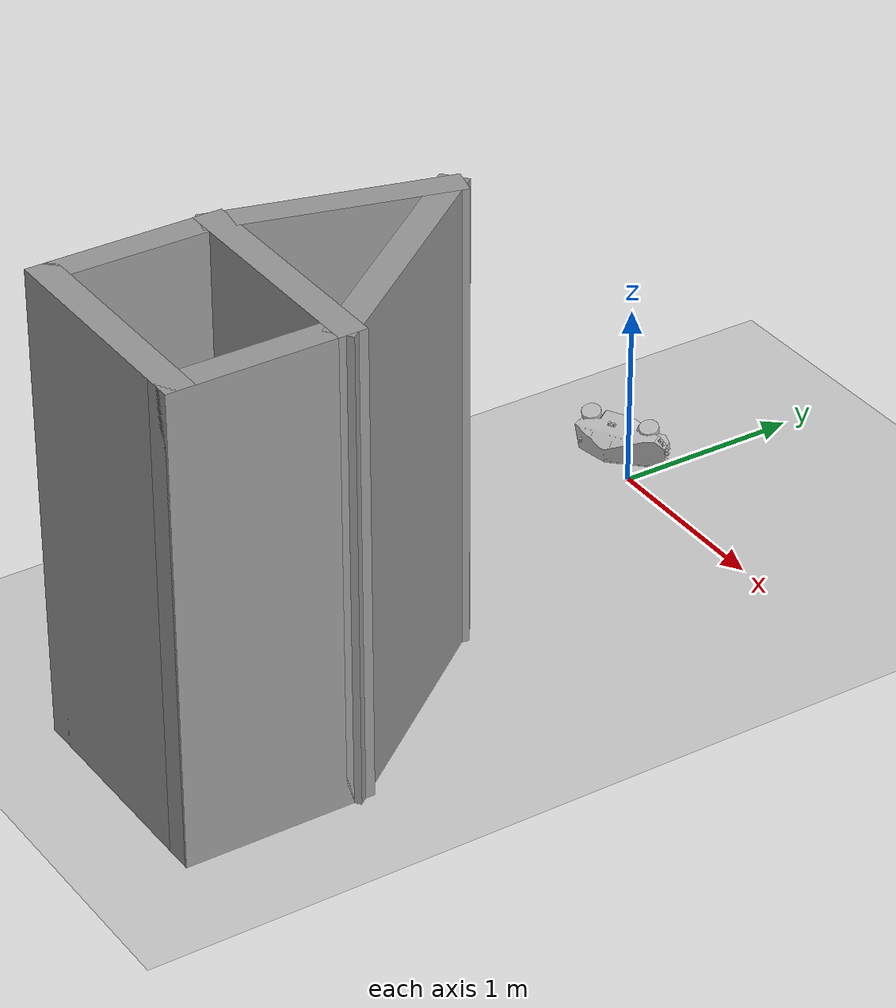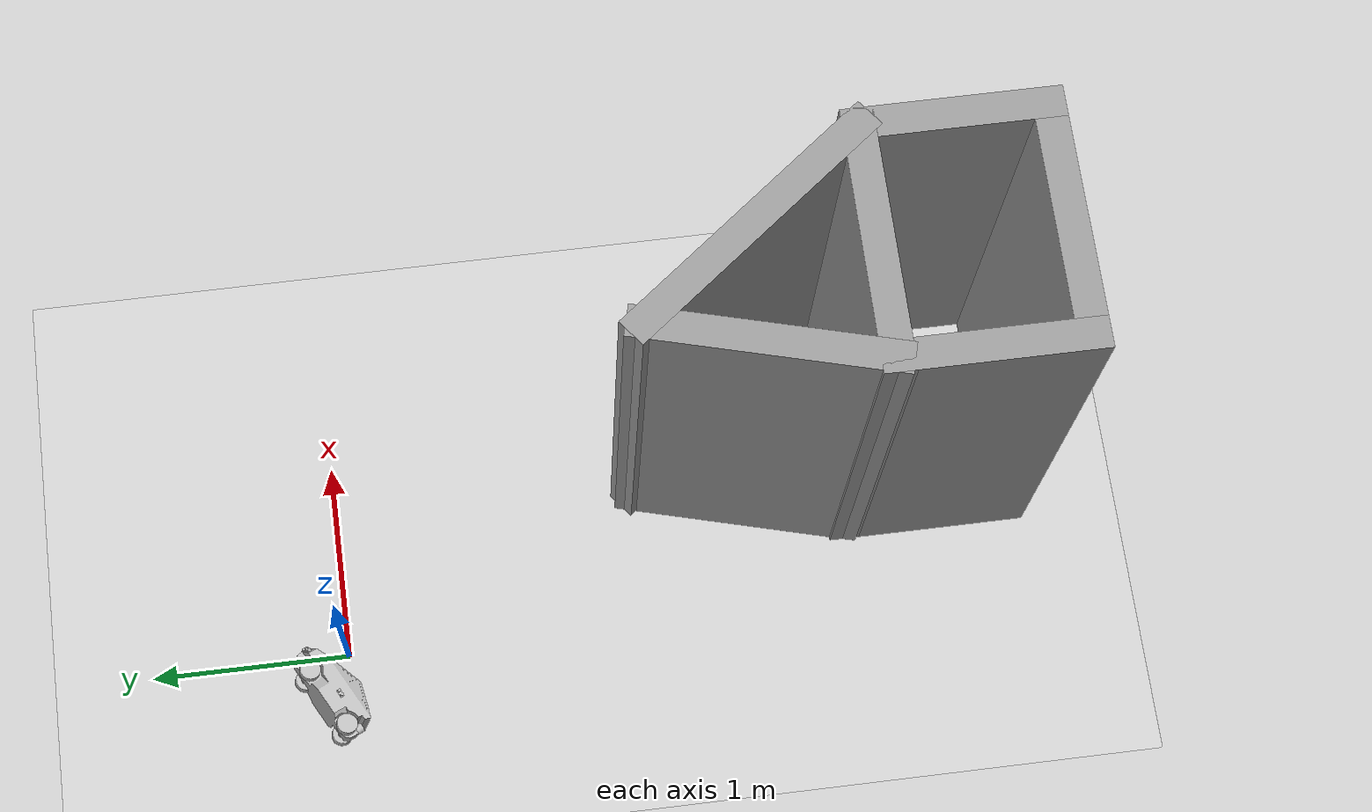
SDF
<sdf version="1.7">
 <world name="default">
  <light name="sun" type="directional">
   <pose>0 0 10 0 -0 0</pose>
   <diffuse>0.8 0.8 0.8 1</diffuse>
   <specular>0.2 0.2 0.2 1</specular>
   <attenuation>
    <range>1000</range>
    <constant>0.9</constant>
    <linear>0.01</linear>
    <quadratic>0.001</quadratic>
   </attenuation>
   <direction>-0.5 0.1 -0.9</direction>
   <spot><inner_angle>0</inner_angle><outer_angle>0</outer_angle><falloff>0</falloff></spot>
  </light>
  <model name="ground_plane">
   <static>1</static>
   <link name="link">
    <collision name="collision">
     <geometry><plane><normal>0 0 1</normal><size>100 100</size></plane></geometry>
     <surface>
      <contact><collide_bitmask>65535</collide_bitmask></contact>
      <friction><ode><mu>100</mu><mu2>50</mu2></ode></friction>
     </surface>
    </collision>
    <visual name="visual">
     <cast_shadows>0</cast_shadows>
     <geometry><plane><normal>0 0 1</normal><size>100 100</size></plane></geometry>
     <material>
      <script><uri>file://media/materials/scripts/gazebo.material</uri><name>Gazebo/Grey</name></script>
     </material>
    </visual>
   </link>
  </model>
  <gravity>0 0 -9.8</gravity>
  <magnetic_field>6e-06 2.3e-05 -4.2e-05</magnetic_field>
  <atmosphere type="adiabatic"/>
  <physics type="ode">
   <max_step_size>0.001</max_step_size>
   <real_time_factor>1</real_time_factor>
   <real_time_update_rate>1000</real_time_update_rate>
  </physics>
  <scene><ambient>0.4 0.4 0.4 1</ambient><background>0.7 0.7 0.7 1</background><shadows>1</shadows></scene>
  <spherical_coordinates>
   <surface_model>EARTH_WGS84</surface_model>
   <latitude_deg>0</latitude_deg>
   <longitude_deg>0</longitude_deg>
   <elevation>0</elevation>
   <heading_deg>0</heading_deg>
  </spherical_coordinates>
  <model name="xytronY">
   <link name="base_link">
    <inertial>
     <pose>-0.023569 0.00712 7e-06 0 -0 0</pose>
     <mass>11.5484</mass>
     <inertia>
      <ixx>0.05819</ixx>
      <ixy>-0.00487047</ixy>
      <ixz>-8.10814e-05</ixz>
      <iyy>0.17727</iyy>
      <iyz>5.18493e-07</iyz>
      <izz>0.182083</izz>
     </inertia>
    </inertial>
    <collision name="base_link_collision">
     <geometry>
      <mesh><scale>1 1 1</scale><uri>/home/ggh/catkin_ws/src/xytronY/meshes/base_link.STL</uri></mesh>
     </geometry>
    </collision>
    <collision name="base_link_fixed_joint_lump__Ulteasonic_B_L_link_collision_1">
     <pose>-0.27028 0.062687 -0.0051 1.5708 -0 -2.1817</pose>
     <geometry>
      <mesh><scale>1 1 1</scale><uri>/home/ggh/catkin_ws/src/xytronY/meshes/Ulteasonic_B_L_link.STL</uri></mesh>
     </geometry>
    </collision>
    <collision name="base_link_fixed_joint_lump__Ulteasonic_B_M_link_collision_2">
     <pose>-0.28988 0 -0.0051 -1.5708 -0 -1.5708</pose>
     <geometry>
      <mesh><scale>1 1 1</scale><uri>/home/ggh/catkin_ws/src/xytronY/meshes/Ulteasonic_B_M_link.STL</uri></mesh>
     </geometry>
    </collision>
    <collision name="base_link_fixed_joint_lump__Ulteasonic_B_R_link_collision_3">
     <pose>-0.27028 -0.062687 -0.0051 1.5708 -0 -0.95993</pose>
     <geometry>
      <mesh><scale>1 1 1</scale><uri>/home/ggh/catkin_ws/src/xytronY/meshes/Ulteasonic_B_R_link.STL</uri></mesh>
     </geometry>
    </collision>
    <collision name="base_link_fixed_joint_lump__Ulteasonic_L_link_collision_4">
     <pose>0.010615 0.0905 -0.0051 1.5708 -0 -3.14159</pose>
     <geometry>
      <mesh><scale>1 1 1</scale><uri>/home/ggh/catkin_ws/src/xytronY/meshes/Ulteasonic_L_link.STL</uri></mesh>
     </geometry>
    </collision>
    <collision name="base_link_fixed_joint_lump__Ulteasonic_R_link_collision_5">
     <pose>0.010615 -0.0905 -0.0051 1.5708 -0 0</pose>
     <geometry>
      <mesh><scale>1 1 1</scale><uri>/home/ggh/catkin_ws/src/xytronY/meshes/Ulteasonic_R_link.STL</uri></mesh>
     </geometry>
    </collision>
    <collision name="base_link_fixed_joint_lump__cam_link_collision_6">
     <pose>0.14716 0 0.07398 1.5708 -0 0</pose>
     <geometry>
      <mesh><scale>1 1 1</scale><uri>/home/ggh/catkin_ws/src/xytronY/meshes/cam_link.STL</uri></mesh>
     </geometry>
    </collision>
    <visual name="base_link_visual">
     <geometry>
      <mesh><scale>1 1 1</scale><uri>/home/ggh/catkin_ws/src/xytronY/meshes/base_link.STL</uri></mesh>
     </geometry>
    </visual>
    <visual name="base_link_fixed_joint_lump__Ulteasonic_B_L_link_visual_1">
     <pose>-0.27028 0.062687 -0.0051 1.5708 -0 -2.1817</pose>
     <geometry>
      <mesh><scale>1 1 1</scale><uri>/home/ggh/catkin_ws/src/xytronY/meshes/Ulteasonic_B_L_link.STL</uri></mesh>
     </geometry>
    </visual>
    <visual name="base_link_fixed_joint_lump__Ulteasonic_B_M_link_visual_2">
     <pose>-0.28988 0 -0.0051 -1.5708 -0 -1.5708</pose>
     <geometry>
      <mesh><scale>1 1 1</scale><uri>/home/ggh/catkin_ws/src/xytronY/meshes/Ulteasonic_B_M_link.STL</uri></mesh>
     </geometry>
    </visual>
    <visual name="base_link_fixed_joint_lump__Ulteasonic_B_R_link_visual_3">
     <pose>-0.27028 -0.062687 -0.0051 1.5708 -0 -0.95993</pose>
     <geometry>
      <mesh><scale>1 1 1</scale><uri>/home/ggh/catkin_ws/src/xytronY/meshes/Ulteasonic_B_R_link.STL</uri></mesh>
     </geometry>
    </visual>
    <visual name="base_link_fixed_joint_lump__Ulteasonic_L_link_visual_4">
     <pose>0.010615 0.0905 -0.0051 1.5708 -0 -3.14159</pose>
     <geometry>
      <mesh><scale>1 1 1</scale><uri>/home/ggh/catkin_ws/src/xytronY/meshes/Ulteasonic_L_link.STL</uri></mesh>
     </geometry>
    </visual>
    <visual name="base_link_fixed_joint_lump__Ulteasonic_R_link_visual_5">
     <pose>0.010615 -0.0905 -0.0051 1.5708 -0 0</pose>
     <geometry>
      <mesh><scale>1 1 1</scale><uri>/home/ggh/catkin_ws/src/xytronY/meshes/Ulteasonic_R_link.STL</uri></mesh>
     </geometry>
    </visual>
    <visual name="base_link_fixed_joint_lump__cam_link_visual_6">
     <pose>0.14716 0 0.07398 1.5708 -0 0</pose>
     <geometry>
      <mesh><scale>1 1 1</scale><uri>/home/ggh/catkin_ws/src/xytronY/meshes/cam_link.STL</uri></mesh>
     </geometry>
    </visual>
   </link>
   <joint name="B_L_joint" type="revolute">
    <pose relative_to="base_link">-0.17419 0.027 -0.0621 1.5708 0.39309 3.14159</pose>
    <parent>base_link</parent>
    <child>B_L_link</child>
    <axis>
     <xyz>0 0 1</xyz>
     <limit><lower>-1e+16</lower><upper>1e+16</upper></limit>
     <dynamics><spring_reference>0</spring_reference><spring_stiffness>0</spring_stiffness></dynamics>
    </axis>
   </joint>
   <link name="B_L_link">
    <pose relative_to="B_L_joint">0 0 0 0 -0 0</pose>
    <inertial>
     <pose>-0 -0 0.039695 0 -0 0</pose>
     <mass>0.39886</mass>
     <inertia>
      <ixx>0.000348</ixx>
      <ixy>0</ixy>
      <ixz>-6.9279e-21</ixz>
      <iyy>0.000348</iyy>
      <iyz>6.0116e-21</iyz>
      <izz>0.00048566</izz>
     </inertia>
    </inertial>
    <collision name="B_L_link_collision">
     <geometry>
      <mesh><scale>1 1 1</scale><uri>/home/ggh/catkin_ws/src/xytronY/meshes/B_L_link.STL</uri></mesh>
     </geometry>
    </collision>
    <visual name="B_L_link_visual">
     <geometry>
      <mesh><scale>1 1 1</scale><uri>/home/ggh/catkin_ws/src/xytronY/meshes/B_L_link.STL</uri></mesh>
     </geometry>
    </visual>
   </link>
   <joint name="B_R_joint" type="revolute">
    <pose relative_to="base_link">-0.17419 -0.023 -0.0621 1.5708 0.9325 0</pose>
    <parent>base_link</parent>
    <child>B_R_link</child>
    <axis>
     <xyz>0 0 1</xyz>
     <limit><lower>-1e+16</lower><upper>1e+16</upper></limit>
     <dynamics><spring_reference>0</spring_reference><spring_stiffness>0</spring_stiffness></dynamics>
    </axis>
   </joint>
   <link name="B_R_link">
    <pose relative_to="B_R_joint">0 0 0 0 -0 0</pose>
    <inertial>
     <pose>-0 -0 0.043695 0 -0 0</pose>
     <mass>0.39886</mass>
     <inertia>
      <ixx>0.000348</ixx>
      <ixy>-2.7105e-20</ixy>
      <ixz>-5.7064e-21</ixz>
      <iyy>0.000348</iyy>
      <iyz>9.0481e-21</iyz>
      <izz>0.00048566</izz>
     </inertia>
    </inertial>
    <collision name="B_R_link_collision">
     <geometry>
      <mesh><scale>1 1 1</scale><uri>/home/ggh/catkin_ws/src/xytronY/meshes/B_R_link.STL</uri></mesh>
     </geometry>
    </collision>
    <visual name="B_R_link_visual">
     <geometry>
      <mesh><scale>1 1 1</scale><uri>/home/ggh/catkin_ws/src/xytronY/meshes/B_R_link.STL</uri></mesh>
     </geometry>
    </visual>
   </link>
   <joint name="F_L_joint" type="revolute">
    <pose relative_to="base_link">0.16081 0.027 -0.0621 1.5708 0.39309 3.14159</pose>
    <parent>base_link</parent>
    <child>F_L_link</child>
    <axis>
     <xyz>0 0 1</xyz>
     <limit><lower>-1e+16</lower><upper>1e+16</upper></limit>
     <dynamics><spring_reference>0</spring_reference><spring_stiffness>0</spring_stiffness></dynamics>
    </axis>
   </joint>
   <link name="F_L_link">
    <pose relative_to="F_L_joint">0 0 0 0 -0 0</pose>
    <inertial>
     <pose>0 0 0.039695 0 -0 0</pose>
     <mass>0.39886</mass>
     <inertia>
      <ixx>0.000348</ixx>
      <ixy>2.7105e-20</ixy>
      <ixz>-6.9279e-21</ixz>
      <iyy>0.000348</iyy>
      <iyz>6.0116e-21</iyz>
      <izz>0.00048566</izz>
     </inertia>
    </inertial>
    <collision name="F_L_link_collision">
     <geometry>
      <mesh><scale>1 1 1</scale><uri>/home/ggh/catkin_ws/src/xytronY/meshes/F_L_link.STL</uri></mesh>
     </geometry>
    </collision>
    <visual name="F_L_link_visual">
     <geometry>
      <mesh><scale>1 1 1</scale><uri>/home/ggh/catkin_ws/src/xytronY/meshes/F_L_link.STL</uri></mesh>
     </geometry>
    </visual>
   </link>
   <joint name="F_R_joint" type="revolute">
    <pose relative_to="base_link">0.16081 -0.023 -0.0621 1.5708 -0.68589 0</pose>
    <parent>base_link</parent>
    <child>F_R_link</child>
    <axis>
     <xyz>0 0 1</xyz>
     <limit><lower>-1e+16</lower><upper>1e+16</upper></limit>
     <dynamics><spring_reference>0</spring_reference><spring_stiffness>0</spring_stiffness></dynamics>
    </axis>
   </joint>
   <link name="F_R_link">
    <pose relative_to="F_R_joint">0 0 0 0 -0 0</pose>
    <inertial>
     <pose>0 0 0.043695 0 -0 0</pose>
     <mass>0.39886</mass>
     <inertia>
      <ixx>0.000348</ixx>
      <ixy>0</ixy>
      <ixz>-1.8117e-21</ixz>
      <iyy>0.000348</iyy>
      <iyz>5.4102e-22</iyz>
      <izz>0.00048566</izz>
     </inertia>
    </inertial>
    <collision name="F_R_link_collision">
     <geometry>
      <mesh><scale>1 1 1</scale><uri>/home/ggh/catkin_ws/src/xytronY/meshes/F_R_link.STL</uri></mesh>
     </geometry>
    </collision>
    <visual name="F_R_link_visual">
     <geometry>
      <mesh><scale>1 1 1</scale><uri>/home/ggh/catkin_ws/src/xytronY/meshes/F_R_link.STL</uri></mesh>
     </geometry>
    </visual>
   </link>
   <joint name="Lidar_joint" type="revolute">
    <pose relative_to="base_link">0.19412 0 0 -3.14159 0 0</pose>
    <parent>base_link</parent>
    <child>Lidar_link</child>
    <axis>
     <xyz>0 0 1</xyz>
     <limit><lower>-1e+16</lower><upper>1e+16</upper></limit>
     <dynamics><spring_reference>0</spring_reference><spring_stiffness>0</spring_stiffness></dynamics>
    </axis>
   </joint>
   <link name="Lidar_link">
    <pose relative_to="Lidar_joint">0 0 0 0 -0 0</pose>
    <inertial>
     <pose>-0 -0 0.0016 0 -0 0</pose>
     <mass>0.076576</mass>
     <inertia>
      <ixx>2.1671e-05</ixx>
      <ixy>-5.6231e-54</ixy>
      <ixz>9.1835e-38</ixz>
      <iyy>2.1671e-05</iyy>
      <iyz>-1.3832e-22</iyz>
      <izz>2.393e-05</izz>
     </inertia>
    </inertial>
    <collision name="Lidar_link_collision">
     <geometry>
      <mesh><scale>1 1 1</scale><uri>/home/ggh/catkin_ws/src/xytronY/meshes/Lidar_link.STL</uri></mesh>
     </geometry>
    </collision>
    <visual name="Lidar_link_visual">
     <geometry>
      <mesh><scale>1 1 1</scale><uri>/home/ggh/catkin_ws/src/xytronY/meshes/Lidar_link.STL</uri></mesh>
     </geometry>
    </visual>
   </link>
   <pose>-0.230397 0.07817 0.102926 -1.85861 -3e-06 -2.65006</pose>
  </model>
  <model name="Untitled">
   <pose>0.797579 -1.7575 0 0 -0 0</pose>
   <link name="Wall_0">
    <collision name="Wall_0_Collision">
     <geometry><box><size>1 0.15 2.5</size></box></geometry>
     <pose>0 0 1.25 0 -0 0</pose>
    </collision>
    <visual name="Wall_0_Visual">
     <pose>0 0 1.25 0 -0 0</pose>
     <geometry><box><size>1 0.15 2.5</size></box></geometry>
     <material>
      <script><uri>file://media/materials/scripts/gazebo.material</uri><name>Gazebo/Grey</name></script>
      <ambient>1 1 1 1</ambient>
     </material>
     <meta><layer>0</layer></meta>
    </visual>
    <pose>-0.407579 -1.2575 0 0 -0 -1.5708</pose>
   </link>
   <link name="Wall_1">
    <collision name="Wall_1_Collision">
     <geometry><box><size>1.25 0.15 2.5</size></box></geometry>
     <pose>0 0 1.25 0 -0 0</pose>
    </collision>
    <visual name="Wall_1_Visual">
     <pose>0 0 1.25 0 -0 0</pose>
     <geometry><box><size>1.25 0.15 2.5</size></box></geometry>
     <material>
      <script><uri>file://media/materials/scripts/gazebo.material</uri><name>Gazebo/Grey</name></script>
      <ambient>1 1 1 1</ambient>
     </material>
     <meta><layer>0</layer></meta>
    </visual>
    <pose>0.142421 -1.6825 0 0 -0 0</pose>
   </link>
   <link name="Wall_2">
    <collision name="Wall_2_Collision">
     <geometry><box><size>1 0.15 2.5</size></box></geometry>
     <pose>0 0 1.25 0 -0 0</pose>
    </collision>
    <visual name="Wall_2_Visual">
     <pose>0 0 1.25 0 -0 0</pose>
     <geometry><box><size>1 0.15 2.5</size></box></geometry>
     <material>
      <script><uri>file://media/materials/scripts/gazebo.material</uri><name>Gazebo/Grey</name></script>
      <ambient>1 1 1 1</ambient>
     </material>
     <meta><layer>0</layer></meta>
    </visual>
    <pose>0.692421 -1.2575 0 0 -0 1.5708</pose>
   </link>
   <link name="Wall_3">
    <collision name="Wall_3_Collision">
     <geometry><box><size>1.25 0.15 2.5</size></box></geometry>
     <pose>0 0 1.25 0 -0 0</pose>
    </collision>
    <visual name="Wall_3_Visual">
     <pose>0 0 1.25 0 -0 0</pose>
     <geometry><box><size>1.25 0.15 2.5</size></box></geometry>
     <material>
      <script><uri>file://media/materials/scripts/gazebo.material</uri><name>Gazebo/Grey</name></script>
      <ambient>1 1 1 1</ambient>
     </material>
     <meta><layer>0</layer></meta>
    </visual>
    <pose>0.142421 -0.8325 0 0 -0 3.14159</pose>
   </link>
   <link name="Wall_4">
    <collision name="Wall_4_Collision">
     <geometry><box><size>1.25 0.15 2.5</size></box></geometry>
     <pose>0 0 1.25 0 -0 0</pose>
    </collision>
    <visual name="Wall_4_Visual">
     <pose>0 0 1.25 0 -0 0</pose>
     <geometry><box><size>1.25 0.15 2.5</size></box></geometry>
     <material>
      <script><uri>file://media/materials/scripts/gazebo.material</uri><name>Gazebo/Grey</name></script>
      <ambient>1 1 1 1</ambient>
     </material>
     <meta><layer>0</layer></meta>
    </visual>
    <pose>-0.265229 -0.301241 0 0 -0 1.309</pose>
   </link>
   <link name="Wall_5">
    <collision name="Wall_5_Collision">
     <geometry><box><size>1.48927 0.15 2.5</size></box></geometry>
     <pose>0 0 1.25 0 -0 0</pose>
    </collision>
    <visual name="Wall_5_Visual">
     <pose>0 0 1.25 0 -0 0</pose>
     <geometry><box><size>1.48927 0.15 2.5</size></box></geometry>
     <material>
      <script><uri>file://media/materials/scripts/gazebo.material</uri><name>Gazebo/Grey</name></script>
      <ambient>1 1 1 1</ambient>
     </material>
     <meta><layer>0</layer></meta>
    </visual>
    <pose>0.284771 -0.301241 0 0 -0 -0.916298</pose>
   </link>
   <static>1</static>
  </model>
 </world>
</sdf>
